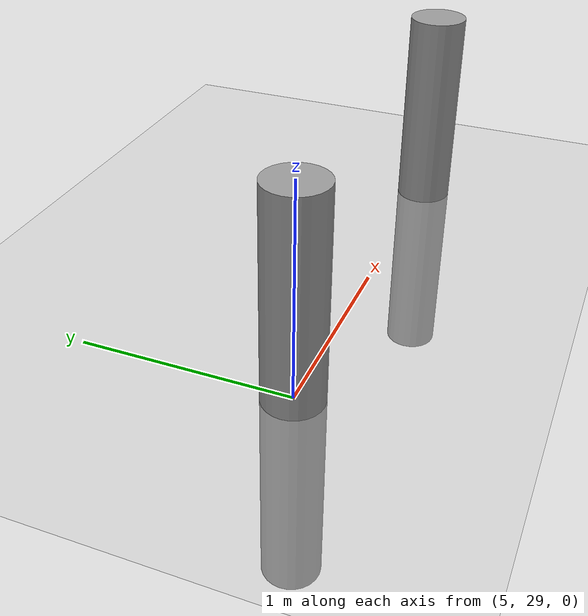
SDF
<sdf version="1.6">
 <world name="default">
  <model name="ground_plane">
   <static>1</static>
   <link name="link">
    <collision name="collision">
     <geometry><plane><normal>0 0 1</normal><size>100 100</size></plane></geometry>
     <surface><friction><ode><mu>100</mu><mu2>50</mu2></ode></friction></surface>
    </collision>
    <visual name="visual">
     <cast_shadows>0</cast_shadows>
     <geometry><plane><normal>0 0 1</normal><size>100 100</size></plane></geometry>
     <material>
      <script><uri>file://media/materials/scripts/gazebo.material</uri><name>Gazebo/Grey</name></script>
     </material>
    </visual>
   </link>
  </model>
  <model name="my_cylinder014_clone_43_0">
   <pose>7 29 0 0 -0 0</pose>
   <link name="my_cylinder014::link">
    <inertial>
     <mass>1</mass>
     <inertia><ixx>0.145833</ixx><ixy>0</ixy><ixz>0</ixz><iyy>0.145833</iyy><iyz>0</iyz><izz>0.125</izz></inertia>
    </inertial>
    <visual name="visual">
     <geometry><cylinder><radius>0.14</radius><length>2</length></cylinder></geometry>
     <material>
      <script><name>Gazebo/Grey</name><uri>file://media/materials/scripts/gazebo.material</uri></script>
      <ambient>0.3 0.3 0.3 1</ambient>
      <diffuse>0.7 0.7 0.7 1</diffuse>
      <specular>1 0.01 0.01 1</specular>
      <emissive>0 0 0 1</emissive>
      <shader type="vertex"><normal_map>__default__</normal_map></shader>
     </material>
    </visual>
    <collision name="collision">
     <geometry><cylinder><radius>0.14</radius><length>2</length></cylinder></geometry>
     <surface>
      <friction>
       <ode><mu>1</mu><mu2>1</mu2><fdir1>0 0 0</fdir1><slip1>0</slip1><slip2>0</slip2></ode>
       <torsional>
        <coefficient>1</coefficient>
        <patch_radius>0</patch_radius>
        <surface_radius>0</surface_radius>
        <use_patch_radius>1</use_patch_radius>
        <ode><slip>0</slip></ode>
       </torsional>
      </friction>
      <bounce><restitution_coefficient>0</restitution_coefficient><threshold>1e+06</threshold></bounce>
      <contact>
       <collide_without_contact>0</collide_without_contact>
       <collide_without_contact_bitmask>1</collide_without_contact_bitmask>
       <collide_bitmask>1</collide_bitmask>
       <ode>
        <soft_cfm>0</soft_cfm>
        <soft_erp>0.2</soft_erp>
        <kp>1e+13</kp>
        <kd>1</kd>
        <max_vel>0.01</max_vel>
        <min_depth>0</min_depth>
       </ode>
       <bullet>
        <split_impulse>1</split_impulse>
        <split_impulse_penetration_threshold>-0.01</split_impulse_penetration_threshold>
        <soft_cfm>0</soft_cfm>
        <soft_erp>0.2</soft_erp>
        <kp>1e+13</kp>
        <kd>1</kd>
       </bullet>
      </contact>
     </surface>
    </collision>
   </link>
   <static>1</static>
  </model>
  <model name="my_cylinder014_clone_43_0">
   <pose>7 29 0 0 -0 0</pose>
   <link name="my_cylinder014::link">
    <inertial>
     <mass>1</mass>
     <inertia><ixx>0.145833</ixx><ixy>0</ixy><ixz>0</ixz><iyy>0.145833</iyy><iyz>0</iyz><izz>0.125</izz></inertia>
    </inertial>
    <visual name="visual">
     <geometry><cylinder><radius>0.14</radius><length>2</length></cylinder></geometry>
     <material>
      <script><name>Gazebo/Grey</name><uri>file://media/materials/scripts/gazebo.material</uri></script>
      <ambient>0.3 0.3 0.3 1</ambient>
      <diffuse>0.7 0.7 0.7 1</diffuse>
      <specular>1 0.01 0.01 1</specular>
      <emissive>0 0 0 1</emissive>
      <shader type="vertex"><normal_map>__default__</normal_map></shader>
     </material>
    </visual>
    <collision name="collision">
     <geometry><cylinder><radius>0.14</radius><length>2</length></cylinder></geometry>
     <surface>
      <friction>
       <ode><mu>1</mu><mu2>1</mu2><fdir1>0 0 0</fdir1><slip1>0</slip1><slip2>0</slip2></ode>
       <torsional>
        <coefficient>1</coefficient>
        <patch_radius>0</patch_radius>
        <surface_radius>0</surface_radius>
        <use_patch_radius>1</use_patch_radius>
        <ode><slip>0</slip></ode>
       </torsional>
      </friction>
      <bounce><restitution_coefficient>0</restitution_coefficient><threshold>1e+06</threshold></bounce>
      <contact>
       <collide_without_contact>0</collide_without_contact>
       <collide_without_contact_bitmask>1</collide_without_contact_bitmask>
       <collide_bitmask>1</collide_bitmask>
       <ode>
        <soft_cfm>0</soft_cfm>
        <soft_erp>0.2</soft_erp>
        <kp>1e+13</kp>
        <kd>1</kd>
        <max_vel>0.01</max_vel>
        <min_depth>0</min_depth>
       </ode>
       <bullet>
        <split_impulse>1</split_impulse>
        <split_impulse_penetration_threshold>-0.01</split_impulse_penetration_threshold>
        <soft_cfm>0</soft_cfm>
        <soft_erp>0.2</soft_erp>
        <kp>1e+13</kp>
        <kd>1</kd>
       </bullet>
      </contact>
     </surface>
    </collision>
   </link>
   <static>1</static>
  </model>
  <model name="my_cylinder014_clone_42_1">
   <pose>5 29 0 0 -0 0</pose>
   <link name="my_cylinder014::link">
    <inertial>
     <mass>1</mass>
     <inertia><ixx>0.145833</ixx><ixy>0</ixy><ixz>0</ixz><iyy>0.145833</iyy><iyz>0</iyz><izz>0.125</izz></inertia>
    </inertial>
    <visual name="visual">
     <geometry><cylinder><radius>0.14</radius><length>2</length></cylinder></geometry>
     <material>
      <script><name>Gazebo/Grey</name><uri>file://media/materials/scripts/gazebo.material</uri></script>
      <ambient>0.3 0.3 0.3 1</ambient>
      <diffuse>0.7 0.7 0.7 1</diffuse>
      <specular>1 0.01 0.01 1</specular>
      <emissive>0 0 0 1</emissive>
      <shader type="vertex"><normal_map>__default__</normal_map></shader>
     </material>
    </visual>
    <collision name="collision">
     <geometry><cylinder><radius>0.14</radius><length>2</length></cylinder></geometry>
     <surface>
      <friction>
       <ode><mu>1</mu><mu2>1</mu2><fdir1>0 0 0</fdir1><slip1>0</slip1><slip2>0</slip2></ode>
       <torsional>
        <coefficient>1</coefficient>
        <patch_radius>0</patch_radius>
        <surface_radius>0</surface_radius>
        <use_patch_radius>1</use_patch_radius>
        <ode><slip>0</slip></ode>
       </torsional>
      </friction>
      <bounce><restitution_coefficient>0</restitution_coefficient><threshold>1e+06</threshold></bounce>
      <contact>
       <collide_without_contact>0</collide_without_contact>
       <collide_without_contact_bitmask>1</collide_without_contact_bitmask>
       <collide_bitmask>1</collide_bitmask>
       <ode>
        <soft_cfm>0</soft_cfm>
        <soft_erp>0.2</soft_erp>
        <kp>1e+13</kp>
        <kd>1</kd>
        <max_vel>0.01</max_vel>
        <min_depth>0</min_depth>
       </ode>
       <bullet>
        <split_impulse>1</split_impulse>
        <split_impulse_penetration_threshold>-0.01</split_impulse_penetration_threshold>
        <soft_cfm>0</soft_cfm>
        <soft_erp>0.2</soft_erp>
        <kp>1e+13</kp>
        <kd>1</kd>
       </bullet>
      </contact>
     </surface>
    </collision>
   </link>
   <static>1</static>
  </model>
 </world>
</sdf>
